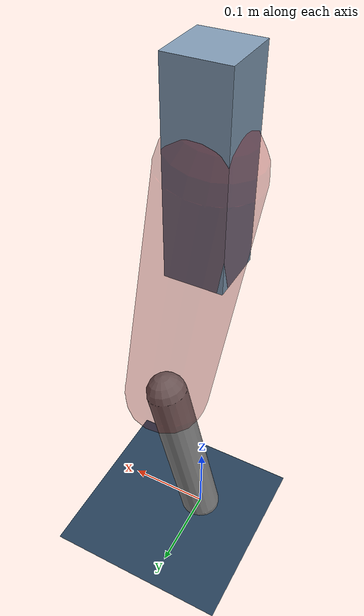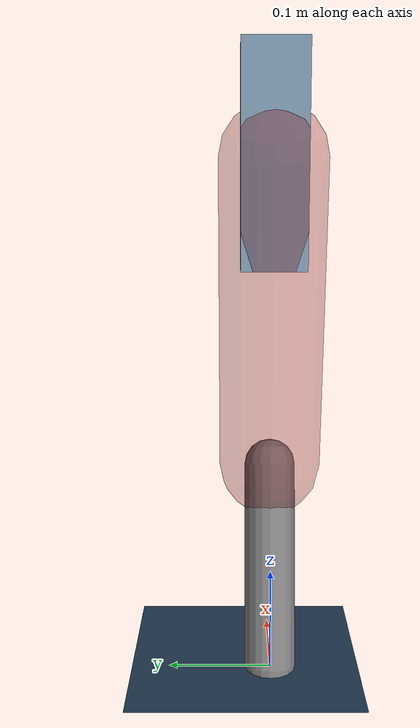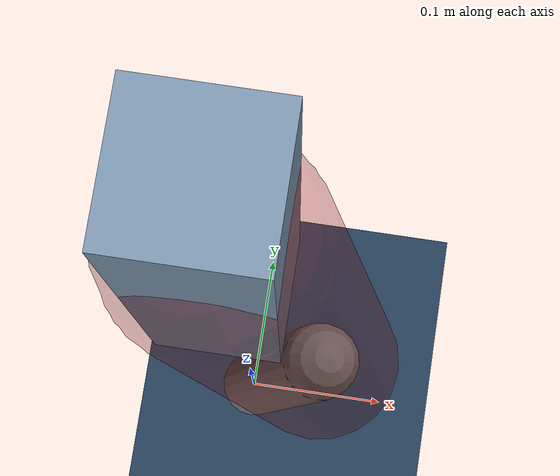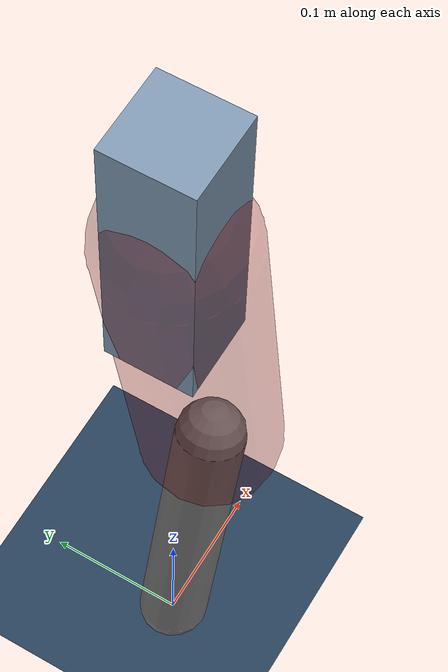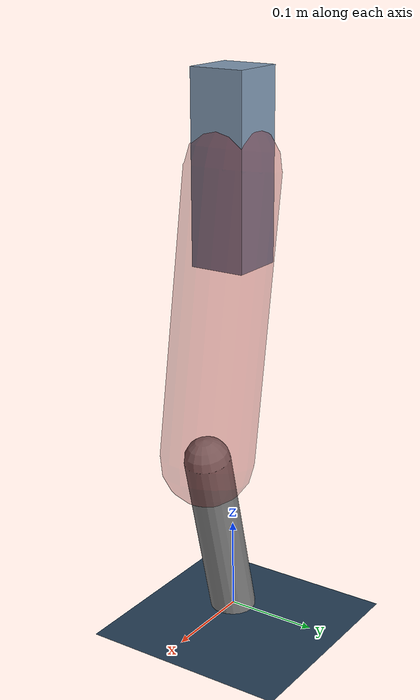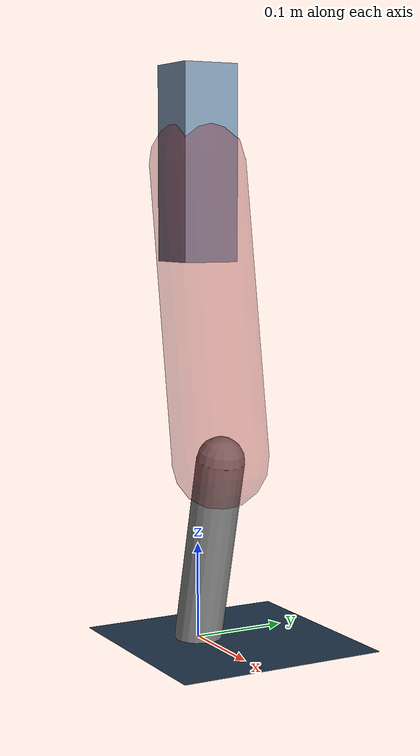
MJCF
<mujoco model="Hopper2D">
	<compiler inertiafromgeom="true" angle="radian" />
	<option timestep="0.001" integrator="implicit" cone="elliptic" solver="Newton" tolerance="1e-10" />

	<default>
		<geom contype="1" conaffinity="1" condim="3" friction="2 0.005 0.0001" solref="0.005 1" />
		<joint limited="true" damping="0.1" />
	</default>

	<asset>
		<texture name="skybox" type="skybox" builtin="gradient" rgb1=".4 .6 .8" rgb2="0 0 0" width="800" height="800" />
		<texture name="grid" type="2d" builtin="checker" rgb1=".1 .2 .3" rgb2=".2 .3 .4" width="300" height="300" mark="edge" markrgb=".2 .3 .4" />
		<material name="ground" texture="grid" texrepeat="1 1" texuniform="true" reflectance="0.1" />
		<material name="leg" rgba="0.5 0.6 0.7 1" />
	</asset>

	<worldbody>

		<geom name="floor" type="plane" size="5 5 0.25" material="ground" />

		<light directional="false" diffuse="0.8 0.8 0.8" specular="0.3 0.3 0.3" pos="0 0 2" dir="0 0 -1" />
		<light mode="targetbodycom" target="base" directional="false" diffuse="0.8 0.8 0.8" specular="0.3 0.3 0.3" pos="0 0 2" dir="0 0 -1" />

		<camera name="fixed" pos="0 -2 1" xyaxes="1 0 0 0 0 1" />
		<camera name="tracking" mode="trackcom" pos="0 -3 1" />

		<body name="root" pos="0 0 0.49658453479109765">
			<joint name="slide_x" type="slide" axis="1 0 0" range="-100 100" />
			<joint name="slide_z" type="slide" axis="0 0 1" range="0 10" />

			<body name="base" pos="0 0 0">
				<geom name="torso" type="box" size="0.03 0.03 0.1" mass="2.472" material="leg" />

				<body name="link1" pos="0 0 0" euler="0 1.4094885141634916 0">
					<joint type="hinge" axis="0 -1 0" pos="0 0 0" name="hinge1" limited="true" range="-3.14 3.14" stiffness="0" damping="0.1" />
					<geom name="thigh" type="capsule" fromto="0 0 0 0.30497726922884594 0 0" size="0.05" rgba="0.5 0 0 0.3" mass="1.002238626917884" />

					<body name="link2" pos="0.30497726922884594 0 0" euler="0 0.4067221322887914 0">
						<joint type="hinge" axis="0 -1 0" pos="0 0 0" name="hinge2" limited="true" range="-3.14 3.14" stiffness="0" damping="0.1" />
						<geom name="shank" type="capsule" fromto="0 0 0 0.20160726556225173 0 0" size="0.025" mass="0.4022465390060265" />

					</body>
				</body>
			</body>
		</body>
	</worldbody>

	<actuator>
		<motor name="torque1" joint="hinge1" ctrlrange="-85.29263375998504 85.29263375998504" ctrllimited="true" gear="1" />
		<motor name="torque2" joint="hinge2" ctrlrange="-91.78775056568993 91.78775056568993" ctrllimited="true" gear="1" />
	</actuator>
</mujoco>
